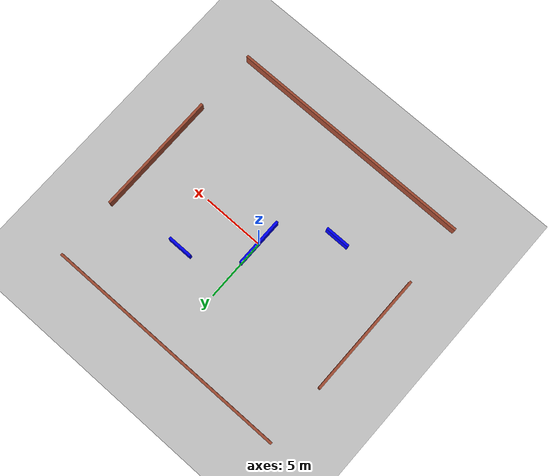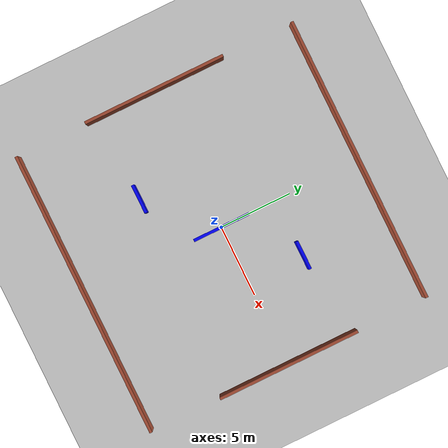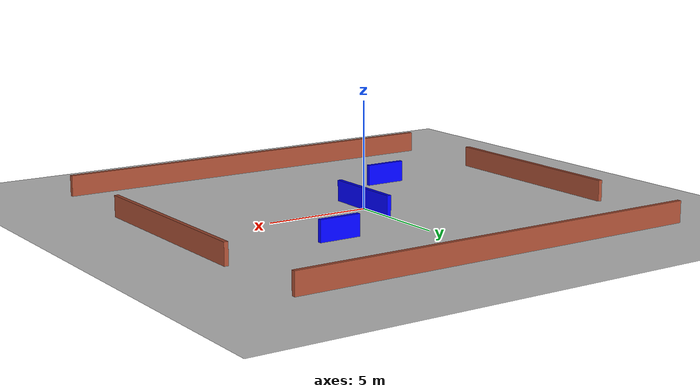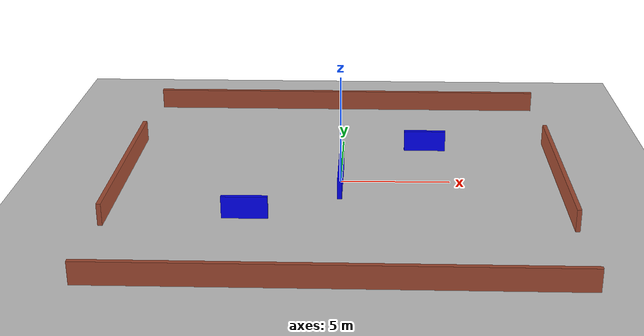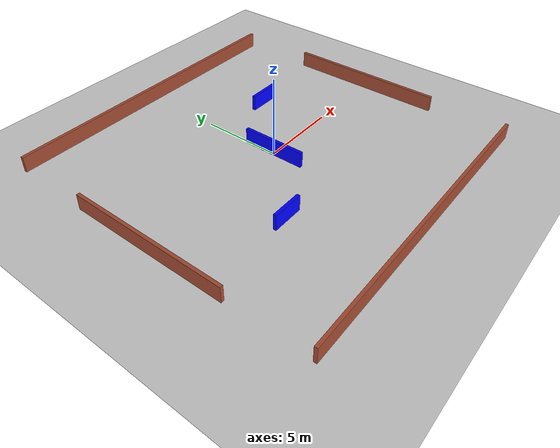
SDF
<?xml version="1.0"?>
<sdf version="1.6">
  <world name="thin_walls_square_obstacles">
    <!-- Ground plane -->
    <include>
      <uri>model://ground_plane</uri>
    </include>

    <!-- Sun -->
    <include>
      <uri>model://sun</uri>
    </include>

    <!-- Thin walls forming a square with brick texture -->
    <!-- Wall 1 -->
    <model name="wall_1">
      <static>true</static>
      <pose>0 10 0.5 0 0 0</pose>
      <link name="link">
        <visual name="visual">
          <geometry>
            <box>
              <size>20 0.2 1</size>
            </box>
          </geometry>
          <material>
            <script>
              <uri>file://media/materials/scripts/gazebo.material</uri>
              <name>Gazebo/Bricks</name>
            </script>
          </material>
        </visual>
        <collision name="collision">
          <geometry>
            <box>
              <size>20 0.2 1</size>
            </box>
          </geometry>
        </collision>
      </link>
    </model>

    <!-- Wall 2 -->
    <model name="wall_2">
      <static>true</static>
      <pose>0 -10 0.5 0 0 0</pose>
      <link name="link">
        <visual name="visual">
          <geometry>
            <box>
              <size>20 0.2 1</size>
            </box>
          </geometry>
          <material>
            <script>
              <uri>file://media/materials/scripts/gazebo.material</uri>
              <name>Gazebo/Bricks</name>
            </script>
          </material>
        </visual>
        <collision name="collision">
          <geometry>
            <box>
              <size>20 0.2 1</size>
            </box>
          </geometry>
        </collision>
      </link>
    </model>

    <!-- Wall 3 -->
    <model name="wall_3">
      <static>true</static>
      <pose>10 0 0.5 0 0 1.5708</pose>
      <link name="link">
        <visual name="visual">
          <geometry>
            <box>
              <size>10 0.2 1</size>
            </box>
          </geometry>
          <material>
            <script>
              <uri>file://media/materials/scripts/gazebo.material</uri>
              <name>Gazebo/Bricks</name>
            </script>
          </material>
        </visual>
        <collision name="collision">
          <geometry>
            <box>
              <size>10 0.2 1</size>
            </box>
          </geometry>
        </collision>
      </link>
    </model>

    <!-- Wall 4 -->
    <model name="wall_4">
      <static>true</static>
      <pose>-10 0 0.5 0 0 1.5708</pose>
      <link name="link">
        <visual name="visual">
          <geometry>
            <box>
              <size>10 0.2 1</size>
            </box>
        </geometry>
        <material>
          <script>
            <uri>file://media/materials/scripts/gazebo.material</uri>
            <name>Gazebo/Bricks</name>
          </script>
        </material>
      </visual>
      <collision name="collision">
        <geometry>
          <box>
            <size>10 0.2 1</size>
          </box>
        </geometry>
      </collision>
    </link>
  </model>

  <!-- Obstacles (colored blue) -->
  <model name="obstacle_1">
    <static>true</static>
    <pose>-4 -4 0.5 0 0 0</pose>
    <link name="link">
      <visual name="visual">
        <geometry>
          <box>
            <size>2 0.2 1</size>
          </box>
        </geometry>
        <material>
          <ambient>0 0 1 1</ambient>
        </material>
      </visual>
      <collision name="collision">
        <geometry>
          <box>
            <size>2 0.2 1</size>
          </box>
        </geometry>
      </collision>
    </link>
  </model>

  <model name="obstacle_2">
    <static>true</static>
    <pose>4 4 0.5 0 0 0</pose>
    <link name="link">
      <visual name="visual">
        <geometry>
          <box>
            <size>2 0.2 1</size>
          </box>
        </geometry>
        <material>
          <ambient>0 0 1 1</ambient>
        </material>
      </visual>
      <collision name="collision">
        <geometry>
          <box>
            <size>2 0.2 1</size>
          </box>
        </geometry>
      </collision>
    </link>
  </model>

  <model name="obstacle_3">
    <static>true</static>
    <pose>0 0 0.5 0 0 1.5708</pose>
    <link name="link">
      <visual name="visual">
        <geometry>
          <box>
            <size>4 0.2 1</size>
          </box>
        </geometry>
        <material>
          <ambient>0 0 1 1</ambient>
        </material>
      </visual>
      <collision name="collision">
        <geometry>
          <box>
            <size>4 0.2 1</size>
          </box>
        </geometry>
      </collision>
    </link>
  </model>
  <!-- Model for goal marking in the simulation environment. -->
  <model name="goal">
    <static>true</static>
    <pose>0 0 0.5 0 0 0</pose>
    <link name="link">
      <visual name="visual">
        <geometry>
          <sphere>
            <radius>0.1</radius>
          </sphere>
        </geometry>
        <material>
          <ambient>0 1 0 1</ambient>
          <diffuse>0 1 0 1</diffuse>
        </material>
      </visual>
      <collision name="collision">
        <geometry>
          <sphere>
            <radius>0.1</radius>
          </sphere>
        </geometry>
      </collision>
    </link>
  </model>

</world>
</sdf>
